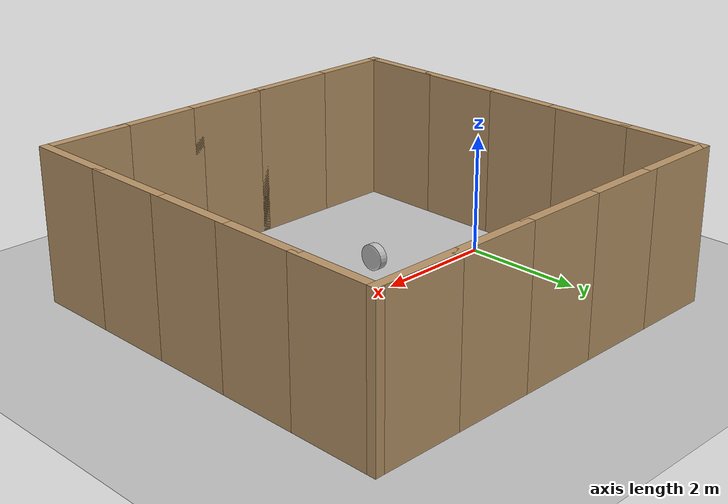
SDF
<sdf version="1.8">
 <world name="default">
  <plugin filename="ignition-gazebo-physics-system" name="ignition::gazebo::systems::Physics"/>
  <plugin filename="ignition-gazebo-user-commands-system" name="ignition::gazebo::systems::UserCommands"/>
  <plugin filename="ignition-gazebo-scene-broadcaster-system" name="ignition::gazebo::systems::SceneBroadcaster"/>
  <plugin filename="ignition-gazebo-sensors-system" name="ignition::gazebo::systems::Sensors">
   <render_engine>ogre2</render_engine>
  </plugin>
  <light name="sun" type="directional">
   <pose>0 0 10 0 0 0</pose>
   <diffuse>0.8 0.8 0.8 1</diffuse>
   <specular>0.2 0.2 0.2 1</specular>
   <attenuation>
    <range>1000</range>
    <constant>0.9</constant>
    <linear>0.01</linear>
    <quadratic>0.001</quadratic>
   </attenuation>
   <direction>-0.5 0.1 -0.9</direction>
  </light>
  <gravity>0 0 -9.8</gravity>
  <magnetic_field>6e-06 2.3e-05 -4.2e-05</magnetic_field>
  <atmosphere type="adiabatic"/>
  <physics name="1ms" type="ode">
   <max_step_size>0.001</max_step_size>
   <real_time_factor>1.0</real_time_factor>
   <real_time_update_rate>1000</real_time_update_rate>
  </physics>
  <scene><ambient>0.4 0.4 0.4 1</ambient><background>0.7 0.7 0.7 1</background><shadows>true</shadows></scene>
  <audio><device>default</device></audio>
  <spherical_coordinates>
   <surface_model>EARTH_WGS84</surface_model>
   <latitude_deg>0</latitude_deg>
   <longitude_deg>0</longitude_deg>
   <elevation>0</elevation>
   <heading_deg>0</heading_deg>
  </spherical_coordinates>
  <model name="ground_plane">
   <static>true</static>
   <link name="link">
    <collision name="collision">
     <geometry><plane><normal>0 0 1</normal><size>100 100</size></plane></geometry>
     <surface>
      <contact><collide_bitmask>65535</collide_bitmask></contact>
      <friction><ode><mu>100</mu><mu2>50</mu2></ode></friction>
     </surface>
    </collision>
    <visual name="visual">
     <cast_shadows>false</cast_shadows>
     <geometry><plane><normal>0 0 1</normal><size>100 100</size></plane></geometry>
     <material>
      <ambient>0.75 0.75 0.75 1</ambient>
      <diffuse>0.75 0.75 0.75 1</diffuse>
      <specular>0.1 0.1 0.1 1</specular>
     </material>
    </visual>
   </link>
  </model>
  <include>
   <name>Stop Sign</name>
   <pose>5.32863 -1.84028 0.007263 0 0 -1.63625</pose>
   <uri>model://stop_sign</uri>
  </include>
  <include>
   <name>car_wheel</name>
   <pose>1.69378 -0.67154 -0.005001 0 0.000096 0</pose>
   <uri>model://car_wheel</uri>
  </include>
  <model name="wood_wall2">
   <static>true</static>
   <pose>2.545 0.185 0 0 0 0</pose>
   <link name="wall">
    <collision name="wall_11_collision">
     <pose>3.375 0 1.25 0 0 1.5708</pose>
     <geometry><box><size>1.5 0.15 2.5</size></box></geometry>
    </collision>
    <visual name="wall_11_visual">
     <pose>3.375 0 1.25 0 0 1.5708</pose>
     <geometry><box><size>1.5 0.15 2.5</size></box></geometry>
     <material>
      <ambient>0.72 0.58 0.40 1</ambient>
      <diffuse>0.72 0.58 0.40 1</diffuse>
      <specular>0.08 0.08 0.08 1</specular>
     </material>
    </visual>
    <collision name="wall_12_collision">
     <pose>3.375 1.35 1.25 0 0 1.5708</pose>
     <geometry><box><size>1.5 0.15 2.5</size></box></geometry>
    </collision>
    <visual name="wall_12_visual">
     <pose>3.375 1.35 1.25 0 0 1.5708</pose>
     <geometry><box><size>1.5 0.15 2.5</size></box></geometry>
     <material>
      <ambient>0.72 0.58 0.40 1</ambient>
      <diffuse>0.72 0.58 0.40 1</diffuse>
      <specular>0.08 0.08 0.08 1</specular>
     </material>
    </visual>
    <collision name="wall_15_collision">
     <pose>3.375 2.7 1.25 0 0 1.5708</pose>
     <geometry><box><size>1.5 0.15 2.5</size></box></geometry>
    </collision>
    <visual name="wall_15_visual">
     <pose>3.375 2.7 1.25 0 0 1.5708</pose>
     <geometry><box><size>1.5 0.15 2.5</size></box></geometry>
     <material>
      <ambient>0.72 0.58 0.40 1</ambient>
      <diffuse>0.72 0.58 0.40 1</diffuse>
      <specular>0.08 0.08 0.08 1</specular>
     </material>
    </visual>
    <collision name="wall_16_collision">
     <pose>2.7 3.375 1.25 0 0 3.14159</pose>
     <geometry><box><size>1.5 0.15 2.5</size></box></geometry>
    </collision>
    <visual name="wall_16_visual">
     <pose>2.7 3.375 1.25 0 0 3.14159</pose>
     <geometry><box><size>1.5 0.15 2.5</size></box></geometry>
     <material>
      <ambient>0.72 0.58 0.40 1</ambient>
      <diffuse>0.72 0.58 0.40 1</diffuse>
      <specular>0.08 0.08 0.08 1</specular>
     </material>
    </visual>
    <collision name="wall_17_collision">
     <pose>1.35 3.375 1.25 0 0 3.14159</pose>
     <geometry><box><size>1.5 0.15 2.5</size></box></geometry>
    </collision>
    <visual name="wall_17_visual">
     <pose>1.35 3.375 1.25 0 0 3.14159</pose>
     <geometry><box><size>1.5 0.15 2.5</size></box></geometry>
     <material>
      <ambient>0.72 0.58 0.40 1</ambient>
      <diffuse>0.72 0.58 0.40 1</diffuse>
      <specular>0.08 0.08 0.08 1</specular>
     </material>
    </visual>
    <collision name="wall_18_collision">
     <pose>0 3.375 1.25 0 0 3.14159</pose>
     <geometry><box><size>1.5 0.15 2.5</size></box></geometry>
    </collision>
    <visual name="wall_18_visual">
     <pose>0 3.375 1.25 0 0 3.14159</pose>
     <geometry><box><size>1.5 0.15 2.5</size></box></geometry>
     <material>
      <ambient>0.72 0.58 0.40 1</ambient>
      <diffuse>0.72 0.58 0.40 1</diffuse>
      <specular>0.08 0.08 0.08 1</specular>
     </material>
    </visual>
    <collision name="wall_19_collision">
     <pose>-1.35 3.375 1.25 0 0 3.14159</pose>
     <geometry><box><size>1.5 0.15 2.5</size></box></geometry>
    </collision>
    <visual name="wall_19_visual">
     <pose>-1.35 3.375 1.25 0 0 3.14159</pose>
     <geometry><box><size>1.5 0.15 2.5</size></box></geometry>
     <material>
      <ambient>0.72 0.58 0.40 1</ambient>
      <diffuse>0.72 0.58 0.40 1</diffuse>
      <specular>0.08 0.08 0.08 1</specular>
     </material>
    </visual>
    <collision name="wall_3_collision">
     <pose>-1.36961 -3.375 1.25 0 0 0</pose>
     <geometry><box><size>1.46077 0.15 2.5</size></box></geometry>
    </collision>
    <visual name="wall_3_visual">
     <pose>-1.36961 -3.375 1.25 0 0 0</pose>
     <geometry><box><size>1.46077 0.15 2.5</size></box></geometry>
     <material>
      <ambient>0.72 0.58 0.40 1</ambient>
      <diffuse>0.72 0.58 0.40 1</diffuse>
      <specular>0.08 0.08 0.08 1</specular>
     </material>
    </visual>
    <collision name="wall_30_collision">
     <pose>-2.7 3.375 1.25 0 0 3.14159</pose>
     <geometry><box><size>1.5 0.15 2.5</size></box></geometry>
    </collision>
    <visual name="wall_30_visual">
     <pose>-2.7 3.375 1.25 0 0 3.14159</pose>
     <geometry><box><size>1.5 0.15 2.5</size></box></geometry>
     <material>
      <ambient>0.72 0.58 0.40 1</ambient>
      <diffuse>0.72 0.58 0.40 1</diffuse>
      <specular>0.08 0.08 0.08 1</specular>
     </material>
    </visual>
    <collision name="wall_31_collision">
     <pose>-3.375 2.7 1.25 0 0 -1.5708</pose>
     <geometry><box><size>1.5 0.15 2.5</size></box></geometry>
    </collision>
    <visual name="wall_31_visual">
     <pose>-3.375 2.7 1.25 0 0 -1.5708</pose>
     <geometry><box><size>1.5 0.15 2.5</size></box></geometry>
     <material>
      <ambient>0.72 0.58 0.40 1</ambient>
      <diffuse>0.72 0.58 0.40 1</diffuse>
      <specular>0.08 0.08 0.08 1</specular>
     </material>
    </visual>
    <collision name="wall_33_collision">
     <pose>-3.375 1.35 1.25 0 0 -1.5708</pose>
     <geometry><box><size>1.5 0.15 2.5</size></box></geometry>
    </collision>
    <visual name="wall_33_visual">
     <pose>-3.375 1.35 1.25 0 0 -1.5708</pose>
     <geometry><box><size>1.5 0.15 2.5</size></box></geometry>
     <material>
      <ambient>0.72 0.58 0.40 1</ambient>
      <diffuse>0.72 0.58 0.40 1</diffuse>
      <specular>0.08 0.08 0.08 1</specular>
     </material>
    </visual>
    <collision name="wall_34_collision">
     <pose>-3.375 0 1.25 0 0 -1.5708</pose>
     <geometry><box><size>1.5 0.15 2.5</size></box></geometry>
    </collision>
    <visual name="wall_34_visual">
     <pose>-3.375 0 1.25 0 0 -1.5708</pose>
     <geometry><box><size>1.5 0.15 2.5</size></box></geometry>
     <material>
      <ambient>0.72 0.58 0.40 1</ambient>
      <diffuse>0.72 0.58 0.40 1</diffuse>
      <specular>0.08 0.08 0.08 1</specular>
     </material>
    </visual>
    <collision name="wall_35_collision">
     <pose>-3.375 -1.35 1.25 0 0 -1.5708</pose>
     <geometry><box><size>1.5 0.15 2.5</size></box></geometry>
    </collision>
    <visual name="wall_35_visual">
     <pose>-3.375 -1.35 1.25 0 0 -1.5708</pose>
     <geometry><box><size>1.5 0.15 2.5</size></box></geometry>
     <material>
      <ambient>0.72 0.58 0.40 1</ambient>
      <diffuse>0.72 0.58 0.40 1</diffuse>
      <specular>0.08 0.08 0.08 1</specular>
     </material>
    </visual>
    <collision name="wall_37_collision">
     <pose>-3.375 -2.7 1.25 0 0 -1.5708</pose>
     <geometry><box><size>1.5 0.15 2.5</size></box></geometry>
    </collision>
    <visual name="wall_37_visual">
     <pose>-3.375 -2.7 1.25 0 0 -1.5708</pose>
     <geometry><box><size>1.5 0.15 2.5</size></box></geometry>
     <material>
      <ambient>0.72 0.58 0.40 1</ambient>
      <diffuse>0.72 0.58 0.40 1</diffuse>
      <specular>0.08 0.08 0.08 1</specular>
     </material>
    </visual>
    <collision name="wall_38_collision">
     <pose>-2.7 -3.375 1.25 0 0 0</pose>
     <geometry><box><size>1.5 0.15 2.5</size></box></geometry>
    </collision>
    <visual name="wall_38_visual">
     <pose>-2.7 -3.375 1.25 0 0 0</pose>
     <geometry><box><size>1.5 0.15 2.5</size></box></geometry>
     <material>
      <ambient>0.72 0.58 0.40 1</ambient>
      <diffuse>0.72 0.58 0.40 1</diffuse>
      <specular>0.08 0.08 0.08 1</specular>
     </material>
    </visual>
    <collision name="wall_4_collision">
     <pose>-0.019614 -3.375 1.25 0 0 0</pose>
     <geometry><box><size>1.5 0.15 2.5</size></box></geometry>
    </collision>
    <visual name="wall_4_visual">
     <pose>-0.019614 -3.375 1.25 0 0 0</pose>
     <geometry><box><size>1.5 0.15 2.5</size></box></geometry>
     <material>
      <ambient>0.72 0.58 0.40 1</ambient>
      <diffuse>0.72 0.58 0.40 1</diffuse>
      <specular>0.08 0.08 0.08 1</specular>
     </material>
    </visual>
    <collision name="wall_5_collision">
     <pose>1.33039 -3.375 1.25 0 0 0</pose>
     <geometry><box><size>1.53923 0.15 2.5</size></box></geometry>
    </collision>
    <visual name="wall_5_visual">
     <pose>1.33039 -3.375 1.25 0 0 0</pose>
     <geometry><box><size>1.53923 0.15 2.5</size></box></geometry>
     <material>
      <ambient>0.72 0.58 0.40 1</ambient>
      <diffuse>0.72 0.58 0.40 1</diffuse>
      <specular>0.08 0.08 0.08 1</specular>
     </material>
    </visual>
    <collision name="wall_7_collision">
     <pose>2.7 -3.375 1.25 0 0 0</pose>
     <geometry><box><size>1.5 0.15 2.5</size></box></geometry>
    </collision>
    <visual name="wall_7_visual">
     <pose>2.7 -3.375 1.25 0 0 0</pose>
     <geometry><box><size>1.5 0.15 2.5</size></box></geometry>
     <material>
      <ambient>0.72 0.58 0.40 1</ambient>
      <diffuse>0.72 0.58 0.40 1</diffuse>
      <specular>0.08 0.08 0.08 1</specular>
     </material>
    </visual>
    <collision name="wall_8_collision">
     <pose>3.375 -2.7 1.25 0 0 1.5708</pose>
     <geometry><box><size>1.5 0.15 2.5</size></box></geometry>
    </collision>
    <visual name="wall_8_visual">
     <pose>3.375 -2.7 1.25 0 0 1.5708</pose>
     <geometry><box><size>1.5 0.15 2.5</size></box></geometry>
     <material>
      <ambient>0.72 0.58 0.40 1</ambient>
      <diffuse>0.72 0.58 0.40 1</diffuse>
      <specular>0.08 0.08 0.08 1</specular>
     </material>
    </visual>
    <collision name="wall_9_collision">
     <pose>3.375 -1.35 1.25 0 0 1.5708</pose>
     <geometry><box><size>1.5 0.15 2.5</size></box></geometry>
    </collision>
    <visual name="wall_9_visual">
     <pose>3.375 -1.35 1.25 0 0 1.5708</pose>
     <geometry><box><size>1.5 0.15 2.5</size></box></geometry>
     <material>
      <ambient>0.72 0.58 0.40 1</ambient>
      <diffuse>0.72 0.58 0.40 1</diffuse>
      <specular>0.08 0.08 0.08 1</specular>
     </material>
    </visual>
   </link>
  </model>
 </world>
</sdf>

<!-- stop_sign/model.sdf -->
<sdf version="1.6">
    <model name="Stop Sign">
        <static>true</static>
        <link name="link">
            <collision name="collision">
                <geometry>
                    <mesh>
                        <uri>model://stop_sign/meshes/stop_sign.dae</uri>
                    </mesh>
                </geometry>
            </collision>
            <visual name="visual">
                <geometry>
                    <mesh>
                        <uri>model://stop_sign/meshes/stop_sign.dae</uri>
                    </mesh>
                </geometry>
                <material>
                    <ambient>1 1 1 1</ambient>
                    <diffuse>1 1 1 1</diffuse>
                    <specular>0.05 0.05 0.05 1</specular>
                    <emissive>0 0 0 1</emissive>
                    <pbr>
                        <metal>
                            <albedo_map>model://stop_sign/materials/textures/StopSign_Diffuse.png</albedo_map>
                            <metalness>0.0</metalness>
                            <roughness>0.9</roughness>
                        </metal>
                    </pbr>
                </material>
            </visual>
        </link>
    </model>
</sdf>

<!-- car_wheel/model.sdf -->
<sdf version="1.6">
    <model name="car_wheel">
        <link name="link">
            <pose>0 0 0.21682 0 1.5707 0</pose>
            <inertial>
                <mass>12</mass>
                <inertia>
                    <ixx>0.167005283</ixx>
                    <ixy>0</ixy>
                    <ixz>0</ixz>
                    <iyy>0.167005283</iyy>
                    <iyz>0</iyz>
                    <izz>0.282065474</izz>
                </inertia>
            </inertial>
            <collision name="collision">
                <geometry>
                    <cylinder>
                        <radius>0.21682</radius>
                        <length>0.16116</length>
                    </cylinder>
                </geometry>
                <surface>
                    <friction>
                        <ode>
                            <mu>1.0</mu>
                            <mu2>1.0</mu2>
                            <fdir1>0 0 1</fdir1>
                            <slip1>0.0</slip1>
                            <slip2>0.0</slip2>
                        </ode>
                    </friction>
                    <contact>
                        <ode>
                            <min_depth>0.005</min_depth>
                            <kp>1e8</kp>
                        </ode>
                    </contact>
                </surface>
            </collision>
            <visual name="visual">
                <pose>0 0 -0.08058 0 0 0</pose>
                <geometry>
                    <mesh>
                        <uri>model://car_wheel/meshes/car_wheel.dae</uri>
                    </mesh>
                </geometry>
            </visual>
        </link>
    </model>
</sdf>
